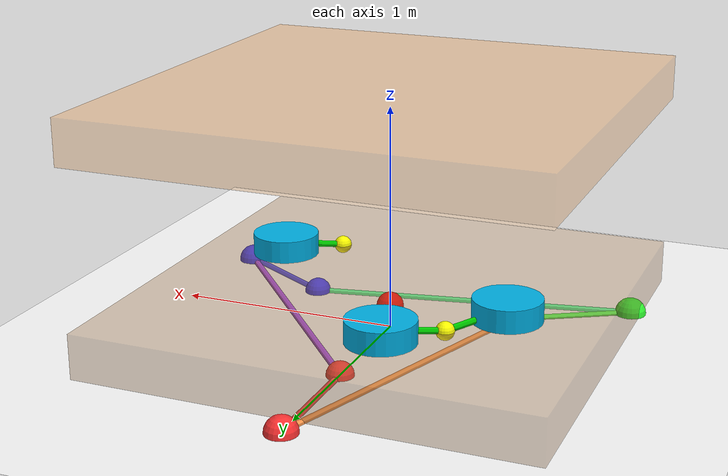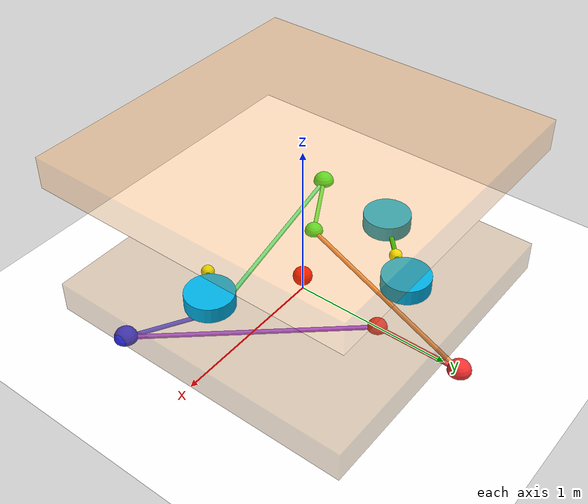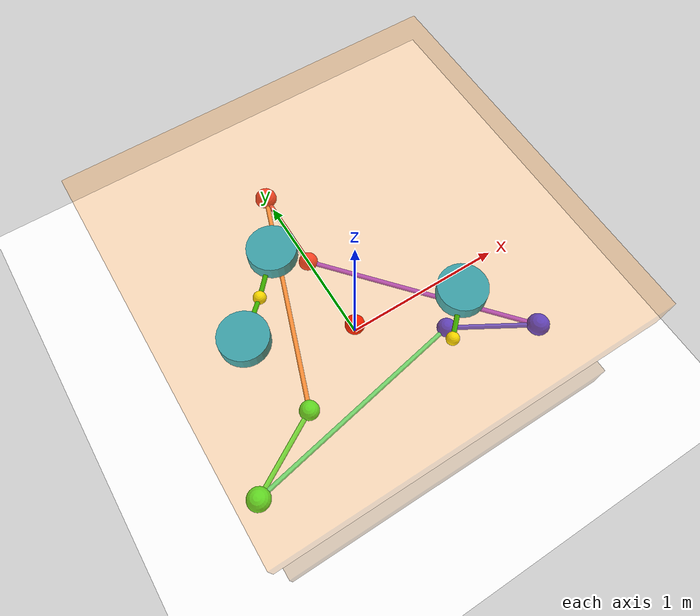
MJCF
<mujoco model="acts">
    <compiler angle="radian" autolimits="true"/>
    <option gravity="0 0 -9.81" timestep="0.002"/>

<visual>
        <headlight ambient="0.4 0.4 0.4" diffuse="0.8 0.8 0.8"/>
        <rgba haze="0 0 0 0"/>
    </visual>

    <asset>
        <texture name="skybox" type="skybox" builtin="flat" rgb1="1 1 1" width="800" height="800" />
        <texture name="clean_ground" type="2d" builtin="flat" rgb1="1 1 1" width="300" height="300"/>
        <material name="grid_mat" texture="clean_ground" texrepeat="10 10" reflectance="0"/>
        <material name="payload_mat" rgba="0.6 0.4 0.2 1"/>
    </asset>

    <worldbody>
        <light pos="0 0 10" dir="0 0 -1"/>
        <geom name="ground" type="plane" size="10 10 0.1" material="grid_mat" condim="3" friction="1 0.005 0.0001"/>

        <body name="target_marker" mocap="true" pos="0.0 0 1.0" euler="0 0 0">
            <site name="target_com" type="sphere" size="0.05" rgba="1 0 0 0.6" group="1"/>
            <geom type="box" size="1.0 1.0 0.1" rgba="1 0.5 0 0.25" contype="0" conaffinity="0" group="1"/>
        </body>

        <body name="payload" pos="0 0 0.1">
            <freejoint name="payload_joint"/>
            <inertial pos="0 0 0" mass="1.0" diaginertia="0.3467 0.3467 0.6667"/>
            <geom name="payload_geom" type="box" size="1.0 1.0 0.1"
                material="payload_mat" condim="3" friction="1 0.005 0.0001"
                rgba="0.6 0.4 0.2 0.35" />
            <site name="payload_com" pos="0 0 0" size="0.06" rgba="1 0 0 1" type="sphere"/>

            <site name="hook_1" pos="-0.4 0.4 0.10" size="0.04" rgba="1 1 0 1"/>
            <site name="hook_2" pos="-0.4 0.4 0.10" size="0.04" rgba="1 1 0 1"/>
            <site name="hook_3" pos="0.4 -0.4 0.10" size="0.04" rgba="1 1 0 1"/>

            <site name="hook_4" pos=" 0.0000  0.5500 -0.10" size="0.06" rgba="1 0.2 0.2 1"/>
            <site name="hook_5" pos="-0.4763 -0.2750 -0.10" size="0.06" rgba="0.2 1 0.2 1"/>
            <site name="hook_6" pos="-0.4763 -0.2750 -0.10" size="0.06" rgba="0.2 1 0.2 1"/>
            <site name="hook_7" pos=" 0.4763 -0.2750 -0.10" size="0.06" rgba="0.2 0.2 1 1"/>
            <site name="hook_8" pos=" 0.4763 -0.2750 -0.10" size="0.06" rgba="0.2 0.2 1 1"/>
            <site name="hook_9" pos=" 0.0000  0.5500 -0.10" size="0.06" rgba="1 0.2 0.2 1"/>
        </body>

        <body name="drone_1" pos="-0.600 0.200 0.250">
            <freejoint name="drone_1_joint"/>
            <inertial pos="0 0 0" mass="2.0" diaginertia="0.01 0.01 0.015"/>
            <geom name="drone_1_geom" type="cylinder" size="0.15 0.05" rgba="0 0.7 0.9 1" mass="2.0" condim="3" friction="1 0.005 0.0001"/>
            <site name="drone_1_com" pos="0 0 0" size="0.02" rgba="1 1 0 1"/>
        </body>
        <body name="drone_2" pos="-0.200 0.600 0.250">
            <freejoint name="drone_2_joint"/>
            <inertial pos="0 0 0" mass="2.0" diaginertia="0.01 0.01 0.015"/>
            <geom name="drone_2_geom" type="cylinder" size="0.15 0.05" rgba="0 0.7 0.9 1" mass="2.0" condim="3" friction="1 0.005 0.0001"/>
            <site name="drone_2_com" pos="0 0 0" size="0.02" rgba="1 1 0 1"/>
        </body>
        <body name="drone_3" pos="0.600 -0.200 0.250">
            <freejoint name="drone_3_joint"/>
            <inertial pos="0 0 0" mass="2.0" diaginertia="0.01 0.01 0.015"/>
            <geom name="drone_3_geom" type="cylinder" size="0.15 0.05" rgba="0 0.7 0.9 1" mass="2.0" condim="3" friction="1 0.005 0.0001"/>
            <site name="drone_3_com" pos="0 0 0" size="0.02" rgba="1 1 0 1"/>
        </body>

        <site name="ground_anchor_4" pos=" 0.0000  1.1000  0" size="0.07" rgba="1 0.2 0.2 1"/>
        <site name="ground_anchor_5" pos=" 0.0000  1.1000  0" size="0.07" rgba="1 0.2 0.2 1"/>
        <site name="ground_anchor_6" pos="-0.9526 -0.5500  0" size="0.07" rgba="0.2 1 0.2 1"/>
        <site name="ground_anchor_7" pos="-0.9526 -0.5500  0" size="0.07" rgba="0.2 1 0.2 1"/>
        <site name="ground_anchor_8" pos=" 0.9526 -0.5500  0" size="0.07" rgba="0.2 0.2 1 1"/>
        <site name="ground_anchor_9" pos=" 0.9526 -0.5500  0" size="0.07" rgba="0.2 0.2 1 1"/>

    </worldbody>

    <tendon>
        <spatial name="cable_1" limited="true" range="0 1.5" width="0.015" rgba="0 0.8 0 1">
            <site site="drone_1_com"/>
            <site site="hook_1"/>
        </spatial>
        <spatial name="cable_2" limited="true" range="0 1.5" width="0.015" rgba="0 0.8 0 1">
            <site site="drone_2_com"/>
            <site site="hook_2"/>
        </spatial>
        <spatial name="cable_3" limited="true" range="0 1.5" width="0.015" rgba="0 0.8 0 1">
            <site site="drone_3_com"/>
            <site site="hook_3"/>
        </spatial>

        <spatial name="cable_4" limited="true" range="0 40.0" width="0.015" rgba="1 0.3 0.3 1">
            <site site="ground_anchor_4"/>
            <site site="hook_4"/>
        </spatial>
        <spatial name="cable_5" limited="true" range="0 40.0" width="0.015" rgba="1 0.6 0.3 1">
            <site site="ground_anchor_5"/>
            <site site="hook_5"/>
        </spatial>
        <spatial name="cable_6" limited="true" range="0 40.0" width="0.015" rgba="0.3 1 0.3 1">
            <site site="ground_anchor_6"/>
            <site site="hook_6"/>
        </spatial>
        <spatial name="cable_7" limited="true" range="0 40.0" width="0.015" rgba="0.3 1 0.6 1">
            <site site="ground_anchor_7"/>
            <site site="hook_7"/>
        </spatial>
        <spatial name="cable_8" limited="true" range="0 40.0" width="0.015" rgba="0.3 0.3 1 1">
            <site site="ground_anchor_8"/>
            <site site="hook_8"/>
        </spatial>
        <spatial name="cable_9" limited="true" range="0 40.0" width="0.015" rgba="0.7 0.3 1 1">
            <site site="ground_anchor_9"/>
            <site site="hook_9"/>
        </spatial>
    </tendon>

    <actuator>
      <motor name="drone_1_thrust" site="drone_1_com" gear="0 0 1 0 0 0"/>
      <motor name="drone_1_roll"   site="drone_1_com" gear="0 0 0 1 0 0"/>
      <motor name="drone_1_pitch"  site="drone_1_com" gear="0 0 0 0 1 0"/>
      <motor name="drone_1_yaw"    site="drone_1_com" gear="0 0 0 0 0 1"/>

      <motor name="drone_2_thrust" site="drone_2_com" gear="0 0 1 0 0 0"/>
      <motor name="drone_2_roll"   site="drone_2_com" gear="0 0 0 1 0 0"/>
      <motor name="drone_2_pitch"  site="drone_2_com" gear="0 0 0 0 1 0"/>
      <motor name="drone_2_yaw"    site="drone_2_com" gear="0 0 0 0 0 1"/>

      <motor name="drone_3_thrust" site="drone_3_com" gear="0 0 1 0 0 0"/>
      <motor name="drone_3_roll"   site="drone_3_com" gear="0 0 0 1 0 0"/>
      <motor name="drone_3_pitch"  site="drone_3_com" gear="0 0 0 0 1 0"/>
      <motor name="drone_3_yaw"    site="drone_3_com" gear="0 0 0 0 0 1"/>

      <position name="cable_4_winch" tendon="cable_4" kp="2000" kv="150" ctrlrange="0 40.0"/>
      <position name="cable_5_winch" tendon="cable_5" kp="2000" kv="150" ctrlrange="0 40.0"/>
      <position name="cable_6_winch" tendon="cable_6" kp="2000" kv="150" ctrlrange="0 40.0"/>
      <position name="cable_7_winch" tendon="cable_7" kp="2000" kv="150" ctrlrange="0 40.0"/>
      <position name="cable_8_winch" tendon="cable_8" kp="2000" kv="150" ctrlrange="0 40.0"/>
      <position name="cable_9_winch" tendon="cable_9" kp="2000" kv="150" ctrlrange="0 40.0"/>
  </actuator>

<sensor>
    <tendonlimitfrc name="cable_1_tension" tendon="cable_1"/>
    <tendonlimitfrc name="cable_2_tension" tendon="cable_2"/>
    <tendonlimitfrc name="cable_3_tension" tendon="cable_3"/>
    <tendonlimitfrc name="cable_4_tension" tendon="cable_4"/>
    <tendonlimitfrc name="cable_5_tension" tendon="cable_5"/>
    <tendonlimitfrc name="cable_6_tension" tendon="cable_6"/>
    <tendonlimitfrc name="cable_7_tension" tendon="cable_7"/>
    <tendonlimitfrc name="cable_8_tension" tendon="cable_8"/>
    <tendonlimitfrc name="cable_9_tension" tendon="cable_9"/>
</sensor>

</mujoco>
